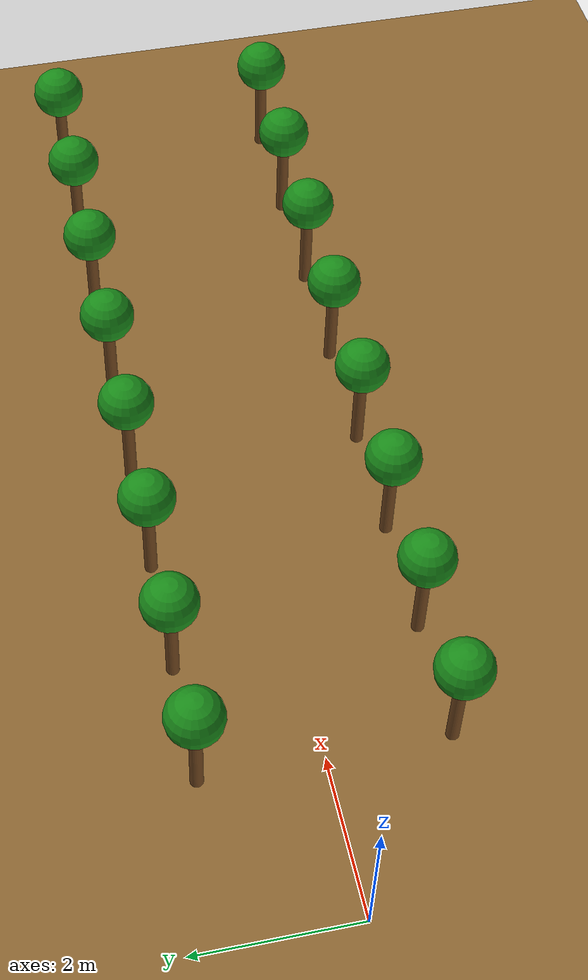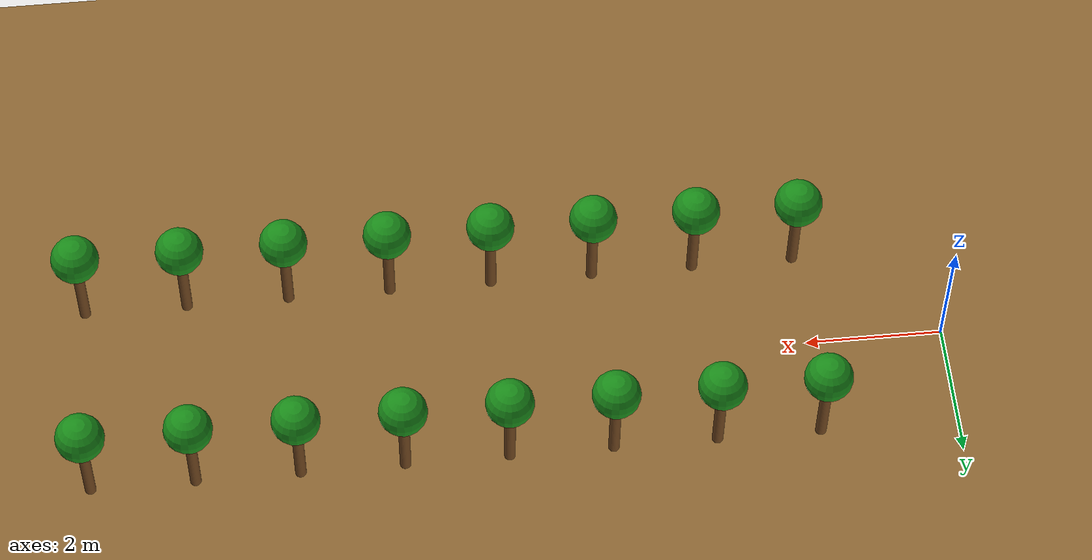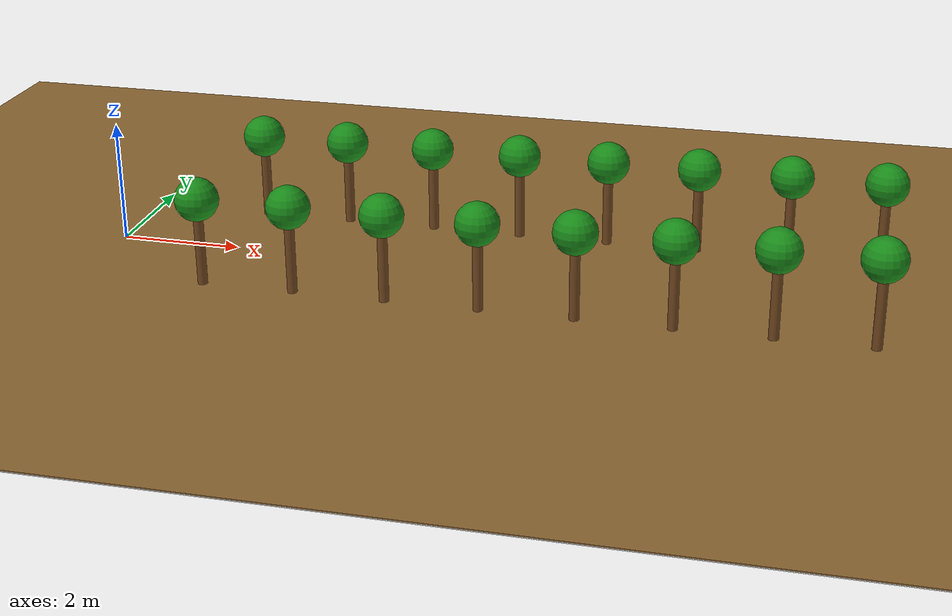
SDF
<?xml version="1.0" ?>
<sdf version="1.6">
  <world name="huerto_papayos">

    <!-- Sol y plano base -->
    <include>
      <uri>model://sun</uri>
    </include>

    <include>
      <uri>model://ground_plane</uri>
    </include>

    <!-- Cámara inicial -->
    <gui fullscreen="0">
      <camera name="user_camera">
        <pose>6 -12 8 0 0.45 1.57</pose>
      </camera>
    </gui>

    <!-- Física -->
    <physics type="ode">
      <max_step_size>0.001</max_step_size>
      <real_time_update_rate>1000</real_time_update_rate>
    </physics>

    <!-- Terreno visible del huerto -->
    <model name="campo_huerto">
      <static>true</static>
      <link name="link">
        <visual name="visual">
          <pose>0 0 0.01 0 0 0</pose>
          <geometry>
            <box>
              <size>30 20 0.02</size>
            </box>
          </geometry>
          <material>
            <ambient>0.55 0.40 0.20 1</ambient>
            <diffuse>0.55 0.40 0.20 1</diffuse>
          </material>
        </visual>
      </link>
    </model>

    <model name="papayo_l1">
      <static>true</static>
      <pose>2.0 1.5 0 0 0 0</pose>
      <link name="tronco">
        <visual name="tronco_visual">
          <pose>0 0 0.6 0 0 0</pose>
          <geometry><cylinder><radius>0.08</radius><length>1.2</length></cylinder></geometry>
          <material><ambient>0.45 0.28 0.12 1</ambient><diffuse>0.45 0.28 0.12 1</diffuse></material>
        </visual>
        <collision name="tronco_collision">
          <pose>0 0 0.6 0 0 0</pose>
          <geometry><cylinder><radius>0.10</radius><length>1.2</length></cylinder></geometry>
        </collision>
      </link>
      <link name="copa">
        <visual name="copa_visual">
          <pose>0 0 1.45 0 0 0</pose>
          <geometry><sphere><radius>0.35</radius></sphere></geometry>
          <material><ambient>0.10 0.55 0.10 1</ambient><diffuse>0.10 0.55 0.10 1</diffuse></material>
        </visual>
        <collision name="copa_collision">
          <pose>0 0 1.45 0 0 0</pose>
          <geometry><sphere><radius>0.30</radius></sphere></geometry>
        </collision>
      </link>
    </model>

    <model name="papayo_l2">
      <static>true</static>
      <pose>3.5 1.5 0 0 0 0</pose>
      <link name="tronco">
        <visual name="tronco_visual">
          <pose>0 0 0.6 0 0 0</pose>
          <geometry><cylinder><radius>0.08</radius><length>1.2</length></cylinder></geometry>
          <material><ambient>0.45 0.28 0.12 1</ambient><diffuse>0.45 0.28 0.12 1</diffuse></material>
        </visual>
        <collision name="tronco_collision">
          <pose>0 0 0.6 0 0 0</pose>
          <geometry><cylinder><radius>0.10</radius><length>1.2</length></cylinder></geometry>
        </collision>
      </link>
      <link name="copa">
        <visual name="copa_visual">
          <pose>0 0 1.45 0 0 0</pose>
          <geometry><sphere><radius>0.35</radius></sphere></geometry>
          <material><ambient>0.10 0.55 0.10 1</ambient><diffuse>0.10 0.55 0.10 1</diffuse></material>
        </visual>
        <collision name="copa_collision">
          <pose>0 0 1.45 0 0 0</pose>
          <geometry><sphere><radius>0.30</radius></sphere></geometry>
        </collision>
      </link>
    </model>

    <model name="papayo_l3">
      <static>true</static>
      <pose>5.0 1.5 0 0 0 0</pose>
      <link name="tronco">
        <visual name="tronco_visual">
          <pose>0 0 0.6 0 0 0</pose>
          <geometry><cylinder><radius>0.08</radius><length>1.2</length></cylinder></geometry>
          <material><ambient>0.45 0.28 0.12 1</ambient><diffuse>0.45 0.28 0.12 1</diffuse></material>
        </visual>
        <collision name="tronco_collision">
          <pose>0 0 0.6 0 0 0</pose>
          <geometry><cylinder><radius>0.10</radius><length>1.2</length></cylinder></geometry>
        </collision>
      </link>
      <link name="copa">
        <visual name="copa_visual">
          <pose>0 0 1.45 0 0 0</pose>
          <geometry><sphere><radius>0.35</radius></sphere></geometry>
          <material><ambient>0.10 0.55 0.10 1</ambient><diffuse>0.10 0.55 0.10 1</diffuse></material>
        </visual>
        <collision name="copa_collision">
          <pose>0 0 1.45 0 0 0</pose>
          <geometry><sphere><radius>0.30</radius></sphere></geometry>
        </collision>
      </link>
    </model>

    <model name="papayo_l4">
      <static>true</static>
      <pose>6.5 1.5 0 0 0 0</pose>
      <link name="tronco">
        <visual name="tronco_visual">
          <pose>0 0 0.6 0 0 0</pose>
          <geometry><cylinder><radius>0.08</radius><length>1.2</length></cylinder></geometry>
          <material><ambient>0.45 0.28 0.12 1</ambient><diffuse>0.45 0.28 0.12 1</diffuse></material>
        </visual>
        <collision name="tronco_collision">
          <pose>0 0 0.6 0 0 0</pose>
          <geometry><cylinder><radius>0.10</radius><length>1.2</length></cylinder></geometry>
        </collision>
      </link>
      <link name="copa">
        <visual name="copa_visual">
          <pose>0 0 1.45 0 0 0</pose>
          <geometry><sphere><radius>0.35</radius></sphere></geometry>
          <material><ambient>0.10 0.55 0.10 1</ambient><diffuse>0.10 0.55 0.10 1</diffuse></material>
        </visual>
        <collision name="copa_collision">
          <pose>0 0 1.45 0 0 0</pose>
          <geometry><sphere><radius>0.30</radius></sphere></geometry>
        </collision>
      </link>
    </model>

    <model name="papayo_l5">
      <static>true</static>
      <pose>8.0 1.5 0 0 0 0</pose>
      <link name="tronco">
        <visual name="tronco_visual">
          <pose>0 0 0.6 0 0 0</pose>
          <geometry><cylinder><radius>0.08</radius><length>1.2</length></cylinder></geometry>
          <material><ambient>0.45 0.28 0.12 1</ambient><diffuse>0.45 0.28 0.12 1</diffuse></material>
        </visual>
        <collision name="tronco_collision">
          <pose>0 0 0.6 0 0 0</pose>
          <geometry><cylinder><radius>0.10</radius><length>1.2</length></cylinder></geometry>
        </collision>
      </link>
      <link name="copa">
        <visual name="copa_visual">
          <pose>0 0 1.45 0 0 0</pose>
          <geometry><sphere><radius>0.35</radius></sphere></geometry>
          <material><ambient>0.10 0.55 0.10 1</ambient><diffuse>0.10 0.55 0.10 1</diffuse></material>
        </visual>
        <collision name="copa_collision">
          <pose>0 0 1.45 0 0 0</pose>
          <geometry><sphere><radius>0.30</radius></sphere></geometry>
        </collision>
      </link>
    </model>

    <model name="papayo_l6">
      <static>true</static>
      <pose>9.5 1.5 0 0 0 0</pose>
      <link name="tronco">
        <visual name="tronco_visual">
          <pose>0 0 0.6 0 0 0</pose>
          <geometry><cylinder><radius>0.08</radius><length>1.2</length></cylinder></geometry>
          <material><ambient>0.45 0.28 0.12 1</ambient><diffuse>0.45 0.28 0.12 1</diffuse></material>
        </visual>
        <collision name="tronco_collision">
          <pose>0 0 0.6 0 0 0</pose>
          <geometry><cylinder><radius>0.10</radius><length>1.2</length></cylinder></geometry>
        </collision>
      </link>
      <link name="copa">
        <visual name="copa_visual">
          <pose>0 0 1.45 0 0 0</pose>
          <geometry><sphere><radius>0.35</radius></sphere></geometry>
          <material><ambient>0.10 0.55 0.10 1</ambient><diffuse>0.10 0.55 0.10 1</diffuse></material>
        </visual>
        <collision name="copa_collision">
          <pose>0 0 1.45 0 0 0</pose>
          <geometry><sphere><radius>0.30</radius></sphere></geometry>
        </collision>
      </link>
    </model>

    <model name="papayo_l7">
      <static>true</static>
      <pose>11.0 1.5 0 0 0 0</pose>
      <link name="tronco">
        <visual name="tronco_visual">
          <pose>0 0 0.6 0 0 0</pose>
          <geometry><cylinder><radius>0.08</radius><length>1.2</length></cylinder></geometry>
          <material><ambient>0.45 0.28 0.12 1</ambient><diffuse>0.45 0.28 0.12 1</diffuse></material>
        </visual>
        <collision name="tronco_collision">
          <pose>0 0 0.6 0 0 0</pose>
          <geometry><cylinder><radius>0.10</radius><length>1.2</length></cylinder></geometry>
        </collision>
      </link>
      <link name="copa">
        <visual name="copa_visual">
          <pose>0 0 1.45 0 0 0</pose>
          <geometry><sphere><radius>0.35</radius></sphere></geometry>
          <material><ambient>0.10 0.55 0.10 1</ambient><diffuse>0.10 0.55 0.10 1</diffuse></material>
        </visual>
        <collision name="copa_collision">
          <pose>0 0 1.45 0 0 0</pose>
          <geometry><sphere><radius>0.30</radius></sphere></geometry>
        </collision>
      </link>
    </model>

    <model name="papayo_l8">
      <static>true</static>
      <pose>12.5 1.5 0 0 0 0</pose>
      <link name="tronco">
        <visual name="tronco_visual">
          <pose>0 0 0.6 0 0 0</pose>
          <geometry><cylinder><radius>0.08</radius><length>1.2</length></cylinder></geometry>
          <material><ambient>0.45 0.28 0.12 1</ambient><diffuse>0.45 0.28 0.12 1</diffuse></material>
        </visual>
        <collision name="tronco_collision">
          <pose>0 0 0.6 0 0 0</pose>
          <geometry><cylinder><radius>0.10</radius><length>1.2</length></cylinder></geometry>
        </collision>
      </link>
      <link name="copa">
        <visual name="copa_visual">
          <pose>0 0 1.45 0 0 0</pose>
          <geometry><sphere><radius>0.35</radius></sphere></geometry>
          <material><ambient>0.10 0.55 0.10 1</ambient><diffuse>0.10 0.55 0.10 1</diffuse></material>
        </visual>
        <collision name="copa_collision">
          <pose>0 0 1.45 0 0 0</pose>
          <geometry><sphere><radius>0.30</radius></sphere></geometry>
        </collision>
      </link>
    </model>

    <!-- =========================================================
         HILERA DERECHA (y = -1.5)
         ========================================================= -->

    <model name="papayo_r1">
      <static>true</static>
      <pose>2.0 -1.5 0 0 0 0</pose>
      <link name="tronco">
        <visual name="tronco_visual">
          <pose>0 0 0.6 0 0 0</pose>
          <geometry><cylinder><radius>0.08</radius><length>1.2</length></cylinder></geometry>
          <material><ambient>0.45 0.28 0.12 1</ambient><diffuse>0.45 0.28 0.12 1</diffuse></material>
        </visual>
        <collision name="tronco_collision">
          <pose>0 0 0.6 0 0 0</pose>
          <geometry><cylinder><radius>0.10</radius><length>1.2</length></cylinder></geometry>
        </collision>
      </link>
      <link name="copa">
        <visual name="copa_visual">
          <pose>0 0 1.45 0 0 0</pose>
          <geometry><sphere><radius>0.35</radius></sphere></geometry>
          <material><ambient>0.10 0.55 0.10 1</ambient><diffuse>0.10 0.55 0.10 1</diffuse></material>
        </visual>
        <collision name="copa_collision">
          <pose>0 0 1.45 0 0 0</pose>
          <geometry><sphere><radius>0.30</radius></sphere></geometry>
        </collision>
      </link>
    </model>

    <model name="papayo_r2">
      <static>true</static>
      <pose>3.5 -1.5 0 0 0 0</pose>
      <link name="tronco">
        <visual name="tronco_visual">
          <pose>0 0 0.6 0 0 0</pose>
          <geometry><cylinder><radius>0.08</radius><length>1.2</length></cylinder></geometry>
          <material><ambient>0.45 0.28 0.12 1</ambient><diffuse>0.45 0.28 0.12 1</diffuse></material>
        </visual>
        <collision name="tronco_collision">
          <pose>0 0 0.6 0 0 0</pose>
          <geometry><cylinder><radius>0.10</radius><length>1.2</length></cylinder></geometry>
        </collision>
      </link>
      <link name="copa">
        <visual name="copa_visual">
          <pose>0 0 1.45 0 0 0</pose>
          <geometry><sphere><radius>0.35</radius></sphere></geometry>
          <material><ambient>0.10 0.55 0.10 1</ambient><diffuse>0.10 0.55 0.10 1</diffuse></material>
        </visual>
        <collision name="copa_collision">
          <pose>0 0 1.45 0 0 0</pose>
          <geometry><sphere><radius>0.30</radius></sphere></geometry>
        </collision>
      </link>
    </model>

    <model name="papayo_r3">
      <static>true</static>
      <pose>5.0 -1.5 0 0 0 0</pose>
      <link name="tronco">
        <visual name="tronco_visual">
          <pose>0 0 0.6 0 0 0</pose>
          <geometry><cylinder><radius>0.08</radius><length>1.2</length></cylinder></geometry>
          <material><ambient>0.45 0.28 0.12 1</ambient><diffuse>0.45 0.28 0.12 1</diffuse></material>
        </visual>
        <collision name="tronco_collision">
          <pose>0 0 0.6 0 0 0</pose>
          <geometry><cylinder><radius>0.10</radius><length>1.2</length></cylinder></geometry>
        </collision>
      </link>
      <link name="copa">
        <visual name="copa_visual">
          <pose>0 0 1.45 0 0 0</pose>
          <geometry><sphere><radius>0.35</radius></sphere></geometry>
          <material><ambient>0.10 0.55 0.10 1</ambient><diffuse>0.10 0.55 0.10 1</diffuse></material>
        </visual>
        <collision name="copa_collision">
          <pose>0 0 1.45 0 0 0</pose>
          <geometry><sphere><radius>0.30</radius></sphere></geometry>
        </collision>
      </link>
    </model>

    <model name="papayo_r4">
      <static>true</static>
      <pose>6.5 -1.5 0 0 0 0</pose>
      <link name="tronco">
        <visual name="tronco_visual">
          <pose>0 0 0.6 0 0 0</pose>
          <geometry><cylinder><radius>0.08</radius><length>1.2</length></cylinder></geometry>
          <material><ambient>0.45 0.28 0.12 1</ambient><diffuse>0.45 0.28 0.12 1</diffuse></material>
        </visual>
        <collision name="tronco_collision">
          <pose>0 0 0.6 0 0 0</pose>
          <geometry><cylinder><radius>0.10</radius><length>1.2</length></cylinder></geometry>
        </collision>
      </link>
      <link name="copa">
        <visual name="copa_visual">
          <pose>0 0 1.45 0 0 0</pose>
          <geometry><sphere><radius>0.35</radius></sphere></geometry>
          <material><ambient>0.10 0.55 0.10 1</ambient><diffuse>0.10 0.55 0.10 1</diffuse></material>
        </visual>
        <collision name="copa_collision">
          <pose>0 0 1.45 0 0 0</pose>
          <geometry><sphere><radius>0.30</radius></sphere></geometry>
        </collision>
      </link>
    </model>

    <model name="papayo_r5">
      <static>true</static>
      <pose>8.0 -1.5 0 0 0 0</pose>
      <link name="tronco">
        <visual name="tronco_visual">
          <pose>0 0 0.6 0 0 0</pose>
          <geometry><cylinder><radius>0.08</radius><length>1.2</length></cylinder></geometry>
          <material><ambient>0.45 0.28 0.12 1</ambient><diffuse>0.45 0.28 0.12 1</diffuse></material>
        </visual>
        <collision name="tronco_collision">
          <pose>0 0 0.6 0 0 0</pose>
          <geometry><cylinder><radius>0.10</radius><length>1.2</length></cylinder></geometry>
        </collision>
      </link>
      <link name="copa">
        <visual name="copa_visual">
          <pose>0 0 1.45 0 0 0</pose>
          <geometry><sphere><radius>0.35</radius></sphere></geometry>
          <material><ambient>0.10 0.55 0.10 1</ambient><diffuse>0.10 0.55 0.10 1</diffuse></material>
        </visual>
        <collision name="copa_collision">
          <pose>0 0 1.45 0 0 0</pose>
          <geometry><sphere><radius>0.30</radius></sphere></geometry>
        </collision>
      </link>
    </model>

    <model name="papayo_r6">
      <static>true</static>
      <pose>9.5 -1.5 0 0 0 0</pose>
      <link name="tronco">
        <visual name="tronco_visual">
          <pose>0 0 0.6 0 0 0</pose>
          <geometry><cylinder><radius>0.08</radius><length>1.2</length></cylinder></geometry>
          <material><ambient>0.45 0.28 0.12 1</ambient><diffuse>0.45 0.28 0.12 1</diffuse></material>
        </visual>
        <collision name="tronco_collision">
          <pose>0 0 0.6 0 0 0</pose>
          <geometry><cylinder><radius>0.10</radius><length>1.2</length></cylinder></geometry>
        </collision>
      </link>
      <link name="copa">
        <visual name="copa_visual">
          <pose>0 0 1.45 0 0 0</pose>
          <geometry><sphere><radius>0.35</radius></sphere></geometry>
          <material><ambient>0.10 0.55 0.10 1</ambient><diffuse>0.10 0.55 0.10 1</diffuse></material>
        </visual>
        <collision name="copa_collision">
          <pose>0 0 1.45 0 0 0</pose>
          <geometry><sphere><radius>0.30</radius></sphere></geometry>
        </collision>
      </link>
    </model>

    <model name="papayo_r7">
      <static>true</static>
      <pose>11.0 -1.5 0 0 0 0</pose>
      <link name="tronco">
        <visual name="tronco_visual">
          <pose>0 0 0.6 0 0 0</pose>
          <geometry><cylinder><radius>0.08</radius><length>1.2</length></cylinder></geometry>
          <material><ambient>0.45 0.28 0.12 1</ambient><diffuse>0.45 0.28 0.12 1</diffuse></material>
        </visual>
        <collision name="tronco_collision">
          <pose>0 0 0.6 0 0 0</pose>
          <geometry><cylinder><radius>0.10</radius><length>1.2</length></cylinder></geometry>
        </collision>
      </link>
      <link name="copa">
        <visual name="copa_visual">
          <pose>0 0 1.45 0 0 0</pose>
          <geometry><sphere><radius>0.35</radius></sphere></geometry>
          <material><ambient>0.10 0.55 0.10 1</ambient><diffuse>0.10 0.55 0.10 1</diffuse></material>
        </visual>
        <collision name="copa_collision">
          <pose>0 0 1.45 0 0 0</pose>
          <geometry><sphere><radius>0.30</radius></sphere></geometry>
        </collision>
      </link>
    </model>

    <model name="papayo_r8">
      <static>true</static>
      <pose>12.5 -1.5 0 0 0 0</pose>
      <link name="tronco">
        <visual name="tronco_visual">
          <pose>0 0 0.6 0 0 0</pose>
          <geometry><cylinder><radius>0.08</radius><length>1.2</length></cylinder></geometry>
          <material><ambient>0.45 0.28 0.12 1</ambient><diffuse>0.45 0.28 0.12 1</diffuse></material>
        </visual>
        <collision name="tronco_collision">
          <pose>0 0 0.6 0 0 0</pose>
          <geometry><cylinder><radius>0.10</radius><length>1.2</length></cylinder></geometry>
        </collision>
      </link>
      <link name="copa">
        <visual name="copa_visual">
          <pose>0 0 1.45 0 0 0</pose>
          <geometry><sphere><radius>0.35</radius></sphere></geometry>
          <material><ambient>0.10 0.55 0.10 1</ambient><diffuse>0.10 0.55 0.10 1</diffuse></material>
        </visual>
        <collision name="copa_collision">
          <pose>0 0 1.45 0 0 0</pose>
          <geometry><sphere><radius>0.30</radius></sphere></geometry>
        </collision>
      </link>
    </model>

  </world>
</sdf>
